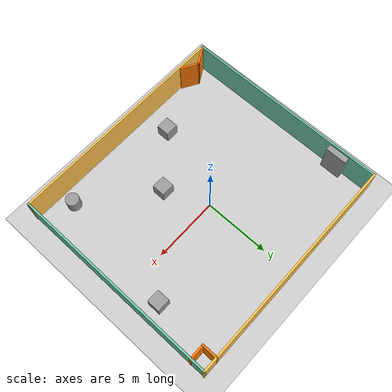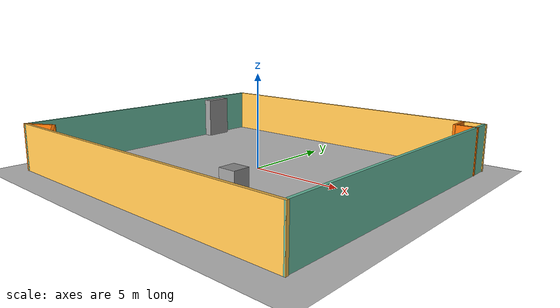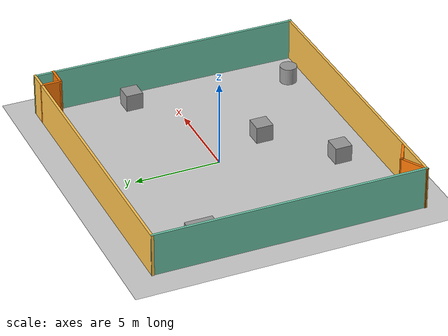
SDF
<sdf version="1.6">
 <world name="default">
  <light name="sun" type="directional">
   <pose>0 0 10 0 -0 0</pose>
   <diffuse>0.8 0.8 0.8 1</diffuse>
   <specular>0.2 0.2 0.2 1</specular>
   <attenuation>
    <range>1000</range>
    <constant>0.9</constant>
    <linear>0.01</linear>
    <quadratic>0.001</quadratic>
   </attenuation>
   <direction>-0.5 0.1 -0.9</direction>
  </light>
  <model name="ground_plane">
   <static>1</static>
   <link name="link">
    <collision name="collision">
     <geometry><plane><normal>0 0 1</normal><size>100 100</size></plane></geometry>
     <surface>
      <contact><collide_bitmask>65535</collide_bitmask></contact>
      <friction><ode><mu>100</mu><mu2>50</mu2></ode></friction>
     </surface>
    </collision>
    <visual name="visual">
     <cast_shadows>0</cast_shadows>
     <geometry><plane><normal>0 0 1</normal><size>100 100</size></plane></geometry>
     <material>
      <script><uri>file://media/materials/scripts/gazebo.material</uri><name>Gazebo/Grey</name></script>
     </material>
    </visual>
   </link>
  </model>
  <gravity>0 0 -9.8</gravity>
  <magnetic_field>6e-06 2.3e-05 -4.2e-05</magnetic_field>
  <atmosphere type="adiabatic"/>
  <physics name="default_physics" default="0" type="ode">
   <max_step_size>0.001</max_step_size>
   <real_time_factor>1</real_time_factor>
   <real_time_update_rate>1000</real_time_update_rate>
  </physics>
  <scene><ambient>0.4 0.4 0.4 1</ambient><background>0.7 0.7 0.7 1</background><shadows>1</shadows></scene>
  <audio><device>default</device></audio>
  <spherical_coordinates>
   <surface_model>EARTH_WGS84</surface_model>
   <latitude_deg>0</latitude_deg>
   <longitude_deg>0</longitude_deg>
   <elevation>0</elevation>
   <heading_deg>0</heading_deg>
  </spherical_coordinates>
  <model name="squ_room">
   <pose>0.177892 -0.462646 0 0 -0 0</pose>
   <link name="Wall_0">
    <collision name="Wall_0_Collision">
     <geometry><box><size>15.9624 0.15 2.5</size></box></geometry>
     <pose>0 0 1.25 0 -0 0</pose>
    </collision>
    <visual name="Wall_0_Visual">
     <pose>0 0 1.25 0 -0 0</pose>
     <geometry><box><size>15.9624 0.15 2.5</size></box></geometry>
     <material>
      <script><uri>file://media/materials/scripts/gazebo.material</uri><name>Gazebo/Grey</name></script>
      <ambient>0.435294 0.796078 0.67451 1</ambient>
     </material>
     <meta><layer>0</layer></meta>
    </visual>
    <pose>-8.6 -0.019023 0 0 -0 -1.57505</pose>
   </link>
   <link name="Wall_1">
    <collision name="Wall_1_Collision">
     <geometry><box><size>17.4477 0.15 2.5</size></box></geometry>
     <pose>0 0 1.25 0 -0 0</pose>
    </collision>
    <visual name="Wall_1_Visual">
     <pose>0 0 1.25 0 -0 0</pose>
     <geometry><box><size>17.4477 0.15 2.5</size></box></geometry>
     <material>
      <script><uri>file://media/materials/scripts/gazebo.material</uri><name>Gazebo/Grey</name></script>
      <ambient>1 0.764706 0.305882 1</ambient>
     </material>
     <meta><layer>0</layer></meta>
    </visual>
    <pose>-0.02003 -7.89258 0 0 -0 0.003768</pose>
   </link>
   <link name="Wall_2">
    <collision name="Wall_2_Collision">
     <geometry><box><size>15.9624 0.15 2.5</size></box></geometry>
     <pose>0 0 1.25 0 -0 0</pose>
    </collision>
    <visual name="Wall_2_Visual">
     <pose>0 0 1.25 0 -0 0</pose>
     <geometry><box><size>15.9624 0.15 2.5</size></box></geometry>
     <material>
      <script><uri>file://media/materials/scripts/gazebo.material</uri><name>Gazebo/Grey</name></script>
      <ambient>0.435294 0.796078 0.67451 1</ambient>
     </material>
     <meta><layer>0</layer></meta>
    </visual>
    <pose>8.62717 0.046156 0 0 -0 1.56655</pose>
   </link>
   <link name="Wall_3">
    <collision name="Wall_3_Collision">
     <geometry><box><size>17.4477 0.15 2.5</size></box></geometry>
     <pose>0 0 1.25 0 -0 0</pose>
    </collision>
    <visual name="Wall_3_Visual">
     <pose>0 0 1.25 0 -0 0</pose>
     <geometry><box><size>17.4477 0.15 2.5</size></box></geometry>
     <material>
      <script><uri>file://media/materials/scripts/gazebo.material</uri><name>Gazebo/Grey</name></script>
      <ambient>1 0.764706 0.305882 1</ambient>
     </material>
     <meta><layer>0</layer></meta>
    </visual>
    <pose>0.0472 7.91972 0 0 -0 -3.13782</pose>
   </link>
   <link name="Wall_5">
    <collision name="Wall_5_Collision">
     <geometry><box><size>1.75 0.15 2.5</size></box></geometry>
     <pose>0 0 1.25 0 -0 0</pose>
    </collision>
    <visual name="Wall_5_Visual">
     <pose>0 0 1.25 0 -0 0</pose>
     <geometry><box><size>1.75 0.15 2.5</size></box></geometry>
     <material>
      <script><uri>file://media/materials/scripts/gazebo.material</uri><name>Gazebo/Grey</name></script>
      <ambient>0.996078 0.47451 0.0196078 1</ambient>
     </material>
     <meta><layer>0</layer></meta>
    </visual>
    <pose>-7.97597 -7.52517 0 0 -0 0.523599</pose>
   </link>
   <link name="Wall_6">
    <collision name="Wall_6_Collision">
     <geometry><box><size>1.5 0.15 2.5</size></box></geometry>
     <pose>0 0 1.25 0 -0 0</pose>
    </collision>
    <visual name="Wall_6_Visual">
     <pose>0 0 1.25 0 -0 0</pose>
     <geometry><box><size>1.5 0.15 2.5</size></box></geometry>
     <material>
      <script><uri>file://media/materials/scripts/gazebo.material</uri><name>Gazebo/Grey</name></script>
      <ambient>0.996078 0.47451 0.0196078 1</ambient>
     </material>
     <meta><layer>0</layer></meta>
    </visual>
    <pose>-6.69859 -7.46267 0 0 -0 -0.523599</pose>
   </link>
   <link name="Wall_8">
    <collision name="Wall_8_Collision">
     <geometry><box><size>1.25 0.15 2.5</size></box></geometry>
     <pose>0 0 1.25 0 -0 0</pose>
    </collision>
    <visual name="Wall_8_Visual">
     <pose>0 0 1.25 0 -0 0</pose>
     <geometry><box><size>1.25 0.15 2.5</size></box></geometry>
     <material>
      <script><uri>file://media/materials/scripts/gazebo.material</uri><name>Gazebo/Grey</name></script>
      <ambient>0.996078 0.47451 0.0196078 1</ambient>
     </material>
     <meta><layer>0</layer></meta>
    </visual>
    <pose>7.58787 7.40045 0 0 -0 -1.5708</pose>
   </link>
   <link name="Wall_9">
    <collision name="Wall_9_Collision">
     <geometry><box><size>1.25 0.15 2.5</size></box></geometry>
     <pose>0 0 1.25 0 -0 0</pose>
    </collision>
    <visual name="Wall_9_Visual">
     <pose>0 0 1.25 0 -0 0</pose>
     <geometry><box><size>1.25 0.15 2.5</size></box></geometry>
     <material>
      <script><uri>file://media/materials/scripts/gazebo.material</uri><name>Gazebo/Grey</name></script>
      <ambient>0.996078 0.47451 0.0196078 1</ambient>
     </material>
     <meta><layer>0</layer></meta>
    </visual>
    <pose>8.13787 6.85045 0 0 -0 0</pose>
   </link>
   <static>1</static>
  </model>
  <model name="unit_box">
   <pose>-8.07965 4.60278 1.18533 -3e-06 -0 -0.000907</pose>
   <link name="link">
    <inertial>
     <mass>1</mass>
     <inertia>
      <ixx>0.166667</ixx>
      <ixy>0</ixy>
      <ixz>0</ixz>
      <iyy>0.166667</iyy>
      <iyz>0</iyz>
      <izz>0.166667</izz>
     </inertia>
    </inertial>
    <collision name="collision"><geometry><box><size>0.47391 1.59219 2.37066</size></box></geometry></collision>
    <visual name="visual">
     <geometry><box><size>0.47391 1.59219 2.37066</size></box></geometry>
     <material>
      <script><name>Gazebo/Grey</name><uri>file://media/materials/scripts/gazebo.material</uri></script>
     </material>
    </visual>
   </link>
  </model>
  <model name="unit_box_0">
   <pose>1.40643 -3.17146 0.499995 1e-05 -0 0</pose>
   <link name="link">
    <inertial>
     <mass>1</mass>
     <inertia>
      <ixx>0.166667</ixx>
      <ixy>0</ixy>
      <ixz>0</ixz>
      <iyy>0.166667</iyy>
      <iyz>0</iyz>
      <izz>0.166667</izz>
     </inertia>
    </inertial>
    <collision name="collision"><geometry><box><size>1 1 1</size></box></geometry></collision>
    <visual name="visual">
     <geometry><box><size>1 1 1</size></box></geometry>
     <material>
      <script><name>Gazebo/Grey</name><uri>file://media/materials/scripts/gazebo.material</uri></script>
     </material>
    </visual>
   </link>
  </model>
  <model name="unit_box_1">
   <pose>-2.27582 -6.28286 0.499995 0 -1e-05 0</pose>
   <link name="link">
    <inertial>
     <mass>1</mass>
     <inertia>
      <ixx>0.166667</ixx>
      <ixy>0</ixy>
      <ixz>0</ixz>
      <iyy>0.166667</iyy>
      <iyz>0</iyz>
      <izz>0.166667</izz>
     </inertia>
    </inertial>
    <collision name="collision"><geometry><box><size>1 1 1</size></box></geometry></collision>
    <visual name="visual">
     <geometry><box><size>1 1 1</size></box></geometry>
     <material>
      <script><name>Gazebo/Grey</name><uri>file://media/materials/scripts/gazebo.material</uri></script>
     </material>
    </visual>
   </link>
  </model>
  <model name="unit_box_2">
   <pose>7.46673 2.22499 0.499995 -1e-05 -0 0</pose>
   <link name="link">
    <inertial>
     <mass>1</mass>
     <inertia>
      <ixx>0.166667</ixx>
      <ixy>0</ixy>
      <ixz>0</ixz>
      <iyy>0.166667</iyy>
      <iyz>0</iyz>
      <izz>0.166667</izz>
     </inertia>
    </inertial>
    <collision name="collision"><geometry><box><size>1 1 1</size></box></geometry></collision>
    <visual name="visual">
     <geometry><box><size>1 1 1</size></box></geometry>
     <material>
      <script><name>Gazebo/Grey</name><uri>file://media/materials/scripts/gazebo.material</uri></script>
     </material>
    </visual>
   </link>
  </model>
  <model name="unit_cylinder">
   <pose>6.38554 -7.1353 0.499997 3e-06 4e-06 -0</pose>
   <link name="link">
    <inertial>
     <mass>1</mass>
     <inertia><ixx>0.145833</ixx><ixy>0</ixy><ixz>0</ixz><iyy>0.145833</iyy><iyz>0</iyz><izz>0.125</izz></inertia>
    </inertial>
    <collision name="collision">
     <geometry><cylinder><radius>0.5</radius><length>1</length></cylinder></geometry>
    </collision>
    <visual name="visual">
     <geometry><cylinder><radius>0.5</radius><length>1</length></cylinder></geometry>
     <material>
      <script><name>Gazebo/Grey</name><uri>file://media/materials/scripts/gazebo.material</uri></script>
     </material>
    </visual>
   </link>
  </model>
 </world>
</sdf>
